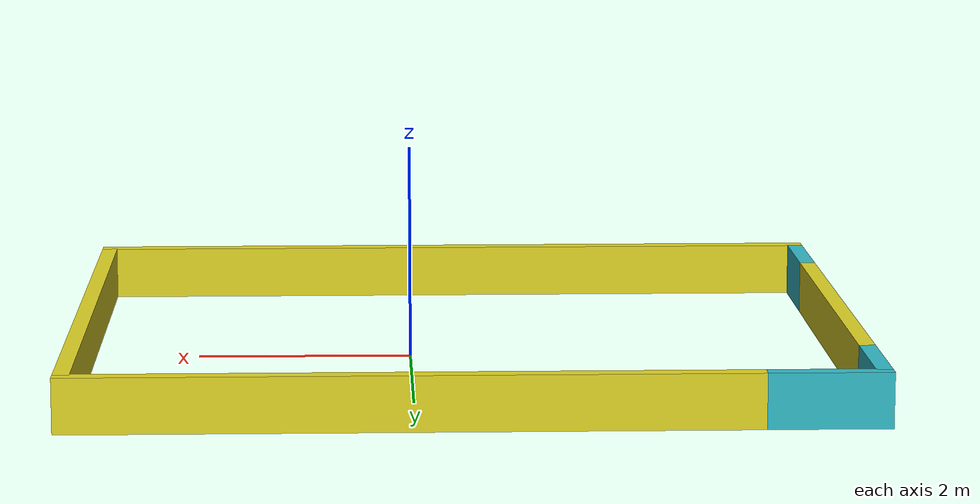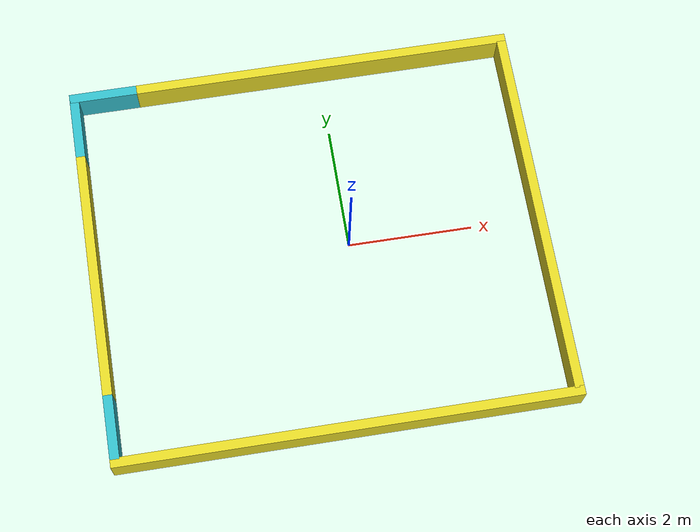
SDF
<!-- Based on https://github.com/ROBOTIS-GIT/turtlebot3_simulations/blob/humble-devel/turtlebot3_gazebo/models/turtlebot3_dqn_world/model.sdf -->
<?xml version='1.0'?>
<sdf version='1.6'>
  <model name='arena'>
    <pose frame=''>0 0 0 0 0 0</pose>
    <link name='south_wall'>
      <collision name='south_wall_collision'>
        <geometry>
          <box>
            <size>6 0.15 0.5</size>
          </box>
        </geometry>
        <pose frame=''>0 0 0.25 0 -0 0</pose>
      </collision>
      <visual name='south_wall_visual_lhs'>
        <pose frame=''>2.5 0 0.25 0 -0 0</pose>
        <geometry>
          <box>
            <size>1 0.15 0.5</size>
          </box>
        </geometry>
        <material>
          <script>
            <uri>model://media/materials/scripts/assessment_materials.material</uri>
            <name>cyan</name>
          </script>
        </material>
      </visual>
      <visual name='south_wall_visual_rhs'>
        <pose frame=''>-2.5 0 0.25 0 -0 0</pose>
        <geometry>
          <box>
            <size>1 0.15 0.5</size>
          </box>
        </geometry>
        <material>
          <script>
            <uri>model://media/materials/scripts/assessment_materials.material</uri>
            <name>cyan</name>
          </script>
        </material>
      </visual>
      <visual name='south_wall_visual_centre'>
        <pose frame=''>0 0 0.25 0 -0 0</pose>
        <geometry>
          <box>
            <size>4 0.15 0.5</size>
          </box>
        </geometry>
        <material>
          <script>
            <uri>model://media/materials/scripts/assessment_materials.material</uri>
            <name>yellow</name>
          </script>
        </material>
      </visual>
      <pose frame=''>-4.05 0 0 0 -0 1.5708</pose>
    </link>
    <link name='west_wall'>
      <collision name='west_wall_collision'>
        <geometry>
          <box>
            <size>7.25 0.15 0.5</size>
          </box>
        </geometry>
        <pose frame=''>0 0 0.25 0 -0 0</pose>
      </collision>
      <visual name='west_wall_visual'>
        <pose frame=''>0.55 0 0.25 0 -0 0</pose>
        <geometry>
          <box>
            <size>6.15 0.15 0.5</size>
          </box>
        </geometry>
        <material>
          <script>
            <uri>model://media/materials/scripts/assessment_materials.material</uri>
            <name>yellow</name>
          </script>
        </material>
      </visual>
      <visual name='west_wall_visual_bottom'>
        <pose frame=''>-3.075 0 0.25 0 -0 0</pose>
        <geometry>
          <box>
            <size>1.1 0.15 0.5</size>
          </box>
        </geometry>
        <material>
          <script>
            <uri>model://media/materials/scripts/assessment_materials.material</uri>
            <name>cyan</name>
          </script>
        </material>
      </visual>
      <pose frame=''>-0.5 3.05 0 0 -0 0</pose>
    </link>
    <link name='north_wall'>
      <collision name='north_wall_collision'>
        <geometry>
          <box>
            <size>6 0.15 0.5</size>
          </box>
        </geometry>
        <pose frame=''>0 0 0.25 0 -0 0</pose>
      </collision>
      <visual name='north_wall_visual'>
        <pose frame=''>0 0 0.25 0 -0 0</pose>
        <geometry>
          <box>
            <size>6 0.15 0.5</size>
          </box>
        </geometry>
        <material>
          <script>
            <uri>model://media/materials/scripts/assessment_materials.material</uri>
            <name>yellow</name>
          </script>
        </material>
      </visual>
      <pose frame=''>3.05 0 0 0 0 -1.5708</pose>
    </link>
    <link name='east_wall'>
      <collision name='east_wall_collision'>
        <geometry>
          <box>
            <size>7.25 0.15 0.5</size>
          </box>
        </geometry>
        <pose frame=''>0 0 0.25 0 -0 0</pose>
      </collision>
      <visual name='east_wall_visual'>
        <pose frame=''>0 0 0.25 0 -0 0</pose>
        <geometry>
          <box>
            <size>7.25 0.15 0.5</size>
          </box>
        </geometry>
        <material>
          <script>
            <uri>model://media/materials/scripts/assessment_materials.material</uri>
            <name>yellow</name>
          </script>
        </material>
      </visual>
      <pose frame=''>-0.5 -3.05 0 0 -0 3.14159</pose>
    </link>
    <static>true</static>
  </model>
</sdf>
